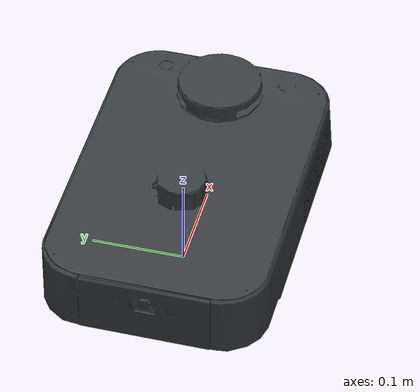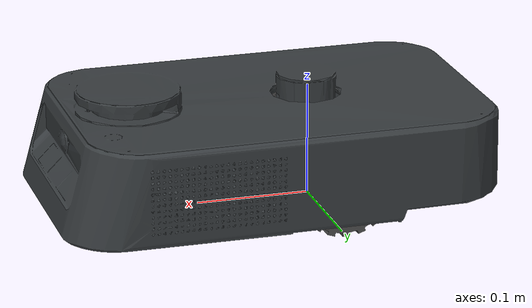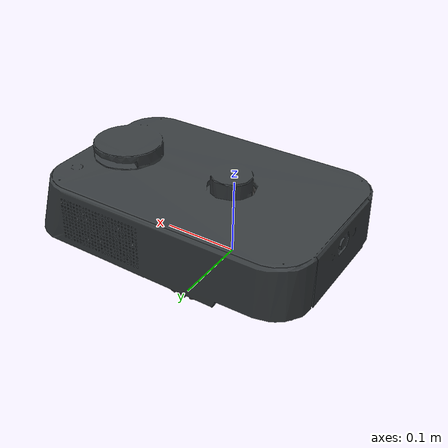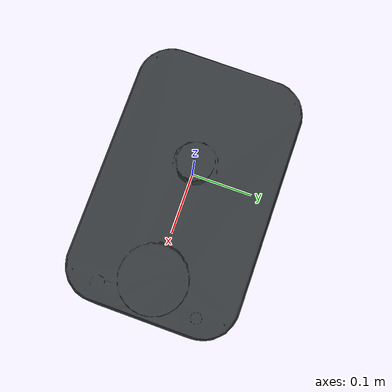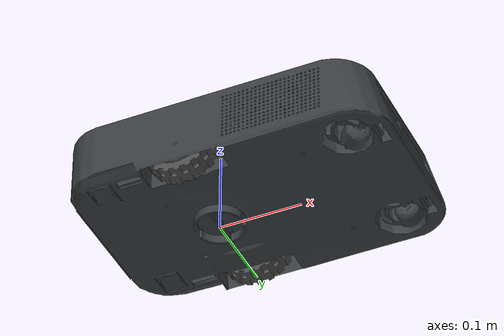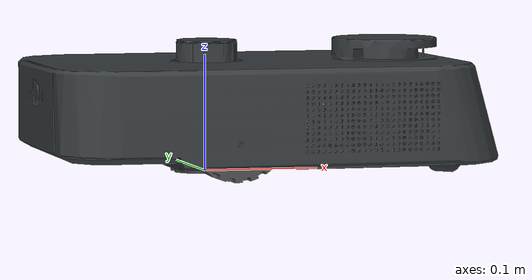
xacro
<?xml version="1.0"?>
<robot name="kachaka"
       xmlns:xacro="http://ros.org/wiki/xacro">
  <xacro:include filename="$(find kachaka_description)/urdf/_materials.urdf.xacro" />
  <xacro:include filename="$(find kachaka_description)/urdf/_values.urdf.xacro" />
  <xacro:include filename="$(find kachaka_description)/urdf/_kachaka.urdf.xacro" />

  <link name="base_footprint" />
  <xacro:kachaka_robot parent="base_footprint">
    <origin xyz="0 0 0" rpy="0 0 0"/>
  </xacro:kachaka_robot>
</robot>

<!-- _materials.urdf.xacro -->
<robot xmlns:xacro="http://ros.org/wiki/xacro">
  <material name="body">
    <color rgba="0.2175 0.2355 0.246 1.0" />
  </material>
  <material name="tire">
    <color rgba="0.3 0.3 0.3 1.0" />
  </material>
  <material name="black">
    <color rgba="0.0 0.0 0.0 1.0" />
  </material>
</robot>

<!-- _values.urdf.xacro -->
<robot xmlns:xacro="http://ros.org/wiki/xacro">
    <xacro:property name="PI"
                    value="3.141592653589793" />
</robot>

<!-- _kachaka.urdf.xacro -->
<robot name="kachaka_robot" xmlns:xacro="http://ros.org/wiki/xacro">
  <xacro:macro name="kachaka_robot" params="parent *origin">
    <!-- base_footprint -->
    <joint name="base_footprint_joint"
          type="fixed">
      <parent link="${parent}" />
      <child link="base_link" />
      <xacro:insert_block name="origin" />
    </joint>
    <link name="base_link">
      <inertial>
        <mass value="10.0" />
        <origin xyz="0.0435 0.0 0.0475"
                rpy="0 0 0" />
        <inertia ixx="${1/12*10*(0.095**2+0.240**2)}" ixy="0" ixz="0"
                iyy="${1/12*10*(0.095**2+0.387**2)}" iyz="0"
                izz="${1/12*10*(0.387**2+0.240**2)}" />
      </inertial>
      <visual>
        <origin rpy="0 0 0" xyz="-0.150 -0.120 0.0"/>
        <geometry>
          <mesh filename="package://kachaka_description/meshes/kachaka/body.stl"/>
        </geometry>
        <material name="body" />
      </visual>
      <collision>
        <origin xyz="0.0435 0.0 0.0475"
                rpy="0 0 0" />
        <geometry>
          <box size="0.387 0.240 0.095" />
        </geometry>
        <material name="body" />
      </collision>
    </link>

    <!-- Wheel(right) -->
    <joint name="base_r_drive_wheel_joint"
          type="continuous">
      <parent link="base_link" />
      <child link="base_r_drive_wheel_link" />
      <origin rpy="0 0 0"
              xyz="0.0 -0.100 0.045" />
      <axis xyz="0 1 0" />
      <limit velocity="10"
            effort="100" />
    </joint>
    <link name="base_r_drive_wheel_link">
      <inertial>
        <mass value="0.2" /> <!-- TODO - Update mass value -->
        <origin xyz="0 0 0"
                rpy="${PI / 2.0} 0 0" />
        <!-- Bug - inertial rotation is not reflected in Rviz2 -->
        <!-- https://github.com/ros2/rviz/pull/1316 -->
        <inertia ixx="${1/12*0.2*(3*0.045**2+0.025**2)}" ixy="0" ixz="0"
                iyy="${1/12*0.2*(3*0.045**2+0.025**2)}" iyz="0"
                izz="${1/2*0.2*(0.045**2)}" />
      </inertial>
      <visual>
        <origin rpy="0 0 0" xyz="0 0 0"/>
        <geometry>
          <mesh filename="package://kachaka_description/meshes/kachaka/right_tire.stl" scale="1.0 1.0 1.0"/>
        </geometry>
        <material name="tire" />
      </visual>
      <collision>
        <origin xyz="0 0 0"
                rpy="${PI / 2.0} 0 0" />
        <geometry>
          <cylinder length="0.025"
                    radius="0.045" />
        </geometry>
        <material name="tire" />
      </collision>
    </link>

    <!-- Wheel(left) -->
    <joint name="base_l_drive_wheel_joint"
          type="continuous">
      <parent link="base_link" />
      <child link="base_l_drive_wheel_link" />
      <origin rpy="0 0 0"
              xyz="0.0 0.100 0.045" />
      <axis xyz="0 1 0" />
      <limit velocity="10"
            effort="100" />
    </joint>
    <link name="base_l_drive_wheel_link">
      <inertial>
        <mass value="0.2" />
        <origin xyz="0 0 0"
                rpy="${PI / 2.0} 0 0" />
        <!-- Bug - inertial rotation is not reflected in Rviz2 -->
        <!-- https://github.com/ros2/rviz/pull/1316 -->
        <inertia ixx="${1/12*0.2*(3*0.045**2+0.025**2)}" ixy="0" ixz="0"
                iyy="${1/12*0.2*(3*0.045**2+0.025**2)}" iyz="0"
                izz="${1/2*0.2*(0.045**2)}" />
      </inertial>
      <visual>
        <origin xyz="0 0 0"
                rpy="0 0 0" />
        <geometry>
          <mesh filename="package://kachaka_description/meshes/kachaka/left_tire.stl" scale="1.0 1.0 1.0"/>
        </geometry>
        <material name="tire" />
      </visual>
      <collision>
        <origin xyz="0 0 0"
                rpy="${PI / 2.0} 0 0" />
        <geometry>
          <cylinder length="0.025"
                    radius="0.045" />
        </geometry>
        <material name="tire" />
      </collision>
    </link>

    <!-- 2D LiDAR -->
    <joint name="lidar_joint"
          type="fixed">
      <parent link="base_link" />
      <child link="laser_link" />
      <origin rpy="0 0 ${PI / 2.0}"
              xyz="0.156 0 0.1049" />
    </joint>
    <link name="laser_link" />

    <!-- Camera(front) -->
    <joint name="camera_front_joint"
          type="fixed">
      <parent link="base_link" />
      <child link="camera_front_link" />
      <origin rpy="-${PI / 2.0} 0 -${PI / 2.0}"
              xyz="${0.2196 - 0.01} 0 0.070" />
    </joint>
    <link name="camera_front_link" />

    <!-- Camera(back) -->
    <joint name="camera_back_joint"
          type="fixed">
      <parent link="base_link" />
      <child link="camera_back_link" />
      <origin rpy="-${PI / 2.0} 0 ${PI / 2.0}"
              xyz="${-0.150 + 0.01} 0 0.070" />
    </joint>
    <link name="camera_back_link" />

    <!-- ToF camera -->
    <joint name="tof_joint"
          type="fixed">
      <parent link="base_link" />
      <child link="tof_link" />
      <origin rpy="-${PI / 4.0} 0 -${PI / 2.0}"
              xyz="0.221 0.0 0.0418" />
    </joint>
    <link name="tof_link" />

    <!-- Docking -->
    <joint name="docking_joint"
          type="prismatic">
      <parent link="base_link" />
      <child link="docking_link" />
      <axis xyz="0 0 1.0" />
      <origin rpy="0 0 0"
              xyz="0 0 0" />
      <limit lower="0.0"
            upper="0.012"
            effort="1.0"
            velocity="1.0" />
    </joint>
    <link name="docking_link">
      <inertial>
        <mass value="0.2" /> <!-- TODO - Update mass value -->
        <origin xyz="0 0 0.1075"
                rpy="0 0 0" />
        <inertia ixx="${1/12*0.2*(3*0.025**2+0.015**2)}" ixy="0" ixz="0"
                 iyy="${1/12*0.2*(3*0.025**2+0.015**2)}" iyz="0"
                 izz="${1/2*0.2*(0.025**2)}" />
      </inertial>
      <visual>
        <geometry>
          <mesh filename="package://kachaka_description/meshes/kachaka/solenoid.stl"
                scale="1.0 1.0 1.0" />
        </geometry>
        <material name="body" />
      </visual>
      <collision>
        <origin xyz="0 0 0.1075"
                rpy="0 0 0" />
        <geometry>
          <cylinder length="0.015"
                    radius="0.025" />
        </geometry>
        <material name="body" />
      </collision>
    </link>

    <!-- IMU -->
    <joint name="imu_joint"
          type="fixed">
      <parent link="base_link" />
      <child link="imu_link" />
      <origin rpy="0 0 0"
              xyz="0.0756 -0.0655 0.05146" />
    </joint>
    <link name="imu_link" />
  </xacro:macro>
</robot>
